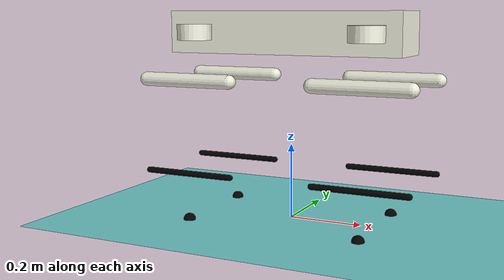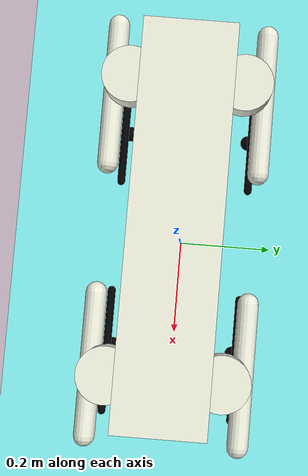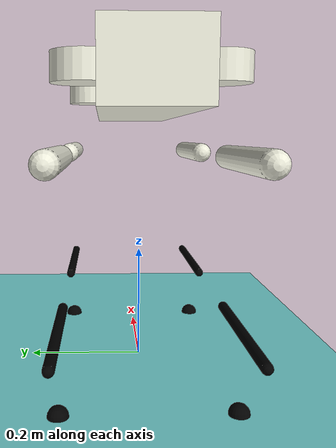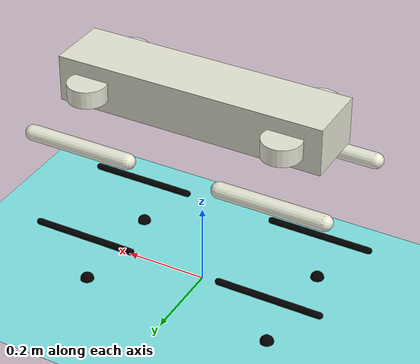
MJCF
<mujoco model="aliengo_description">
    <compiler angle="radian" meshdir="../meshes/" />

    <option iterations="50" />
    <custom>
        <!-- brax custom params -->
        <numeric data="0.0 0.0 0.5 1.0 0.0 0.0 0.0 0.0 0.5 -0.9 0.0 0.5 -0.9 0.0 0.5 -0.9 0.0 0.5 -0.9" name="init_qpos"/>
        <numeric data="0" name="matrix_inv_iterations"/>
        <numeric data="20" name="solver_maxls"/>
    </custom>

    <default>
        <geom contype="0" conaffinity="1" condim='3' rgba="0.5 0.6 0.7 1" group="0" />
        <light castshadow="false" diffuse="1 1 1"/>
        <motor ctrlrange="-44 44" ctrllimited="false"/>
        <camera fovy="60"/>
        <joint damping="0.1" armature="0.01" frictionloss="0.0" />
    </default>

    <asset>
        <mesh name="trunk" file="trunk.stl" />
        <mesh name="hip" file="hip.stl" />
        <mesh name="thigh_mirror" file="thigh_mirror.stl" />
        <mesh name="calf" file="calf.stl" />
        <mesh name="thigh" file="thigh.stl" />
    </asset>

    <asset>
        <texture type="skybox" builtin="gradient" rgb1="1.0 1.0 1.0" rgb2="1.0 1.0 1.0" width="512" height="512"/>
        <texture name="plane" type="2d" builtin="flat" rgb1="1 1 1" rgb2="1 1 1" width="512" height="512" mark="cross" markrgb="0 0 0"/>
        <material name="plane" reflectance="0.0" texture="plane" texrepeat="3 3" texuniform="true"/>
    </asset>

    <visual>
        <rgba com="0.502 1.0 0 0.5" contactforce="0.98 0.4 0.4 0.7" contactpoint="1.0 1.0 0.6 0.4"/>
        <scale com="0.2" forcewidth="0.035" contactwidth="0.10" contactheight="0.04"/>
    </visual>

    <worldbody>
        <light directional="true" diffuse=".8 .8 .8" pos="0 0 10" dir="0 0 -10"/>
        <camera name="track" mode="trackcom" pos="0 -1.3 1.6" xyaxes="1 0 0 0 0.707 0.707"/>
        <geom name='floor' type='plane' contype='1' conaffinity='0' rgba="0.5 0.9 0.9 0.1" material='plane' pos='0 0 0' size='0 0 1'/>

        <body name="trunk" pos="0 0 0.5">
            <inertial pos="0.008465 0.004045 -0.000763" mass="9.041" diaginertia="0.033260231 0.16117211 0.17460442" />
            <joint name="trunk" type="free" damping="0" armature="0" frictionloss="0"/>
            <geom type="box" contype="0" conaffinity="0" group="1" rgba="0.913725 0.913725 0.847059 1" size="0.3235 0.075 0.056" />

            <body name="FR_hip" pos="0.2399 -0.051 0">
                <inertial pos="-0.022191 -0.015144 -1.5e-05" mass="1.993" diaginertia="0.002903894 0.004907517 0.005586944" />
                <joint name="FR_hip_joint" pos="0 0 0" axis="1 0 0" limited="false" range="-0.873 1.047" />
                <geom type="cylinder" contype="0" conaffinity="0" group="1" rgba="0.913725 0.913725 0.847059 1" size="0.046 0.0209" pos="0 -0.0415 0" quat="0 0 0 1" />

                <body name="FR_thigh" pos="0 -0.083 0">
                    <inertial pos="-0.005607 0.003877 -0.048199" mass="0.639" diaginertia="0.005666803 0.005847229 0.000369811" />
                    <joint name="FR_thigh_joint" pos="0 0 0" axis="0 1 0" limited="false" range="-0.524 3.927" />
                    <geom type="capsule" contype="0" conaffinity="0" group="1" rgba="0.913725 0.913725 0.847059 1" size="0.0187 0.125" pos="0 0 -0.125" quat="0.707107 0 0.707107 0" />

                    <body name="FR_calf" pos="0 0 -0.25">
                        <inertial pos="0.002781 6.3e-05 -0.142518" mass="0.207" diaginertia="0.006341369 0.006355157 3.9188e-05" />
                        <joint name="FR_calf_joint" pos="0 0 0" axis="0 1 0" limited="false" range="-2.775 -0.611" />
                        <geom type="capsule" contype="0" conaffinity="0" group="1" rgba="0 0 0 1" size="0.008 0.125" pos="0 0 -0.125" quat="0.707107 0 0.707107 0" />
                        <geom type="sphere" size="0.0165" pos="0 0 -0.25" rgba="0 0 0 1" />
                    </body>
                </body>
            </body>

            <body name="FL_hip" pos="0.2399 0.051 0">
                <inertial pos="-0.022191 0.015144 -1.5e-05" mass="1.993" diaginertia="0.002903894 0.004907517 0.005586944" />
                <joint name="FL_hip_joint" pos="0 0 0" axis="1 0 0" limited="false" range="-0.873 1.047" />
                <geom type="cylinder" contype="0" conaffinity="0" group="1" rgba="0.913725 0.913725 0.847059 1" size="0.046 0.0209" pos="0 0.0415 0" quat="0 0 0 1" />

                <body name="FL_thigh" pos="0 0.083 0">
                    <inertial pos="-0.005607 -0.003877 -0.048199" mass="0.639" diaginertia="0.005666803 0.005847229 0.000369811" />
                    <joint name="FL_thigh_joint" pos="0 0 0" axis="0 1 0" limited="false" range="-0.524 3.927" />
                    <geom type="capsule" contype="0" conaffinity="0" group="1" rgba="0.913725 0.913725 0.847059 1" size="0.0187 0.125" pos="0 0 -0.125" quat="0.707107 0 0.707107 0" />

                    <body name="FL_calf" pos="0 0 -0.25">
                        <inertial pos="0.002781 -6.3e-05 -0.142518" mass="0.207" diaginertia="0.006341369 0.006355157 3.9188e-05" />
                        <joint name="FL_calf_joint" pos="0 0 0" axis="0 1 0" limited="false" range="-2.775 -0.611" />
                        <geom type="capsule" contype="0" conaffinity="0" group="1" rgba="0 0 0 1" size="0.008 0.125" pos="0 0 -0.125" quat="0.707107 0 0.707107 0" />
                        <geom type="sphere" size="0.0165" pos="0 0 -0.25" rgba="0 0 0 1" />
                    </body>
                </body>
            </body>

            <body name="RR_hip" pos="-0.2399 -0.051 0">
                <inertial pos="0.022191 -0.015144 -1.5e-05" mass="1.993" diaginertia="0.002903894 0.004907517 0.005586944" />
                <joint name="RR_hip_joint" pos="0 0 0" axis="1 0 0" limited="false" range="-0.873 1.047" />
                <geom type="cylinder" contype="0" conaffinity="0" group="1" rgba="0.913725 0.913725 0.847059 1" size="0.046 0.0209" pos="0 -0.0415 0" quat="0 0 0 1" />

                <body name="RR_thigh" pos="0 -0.083 0">
                    <inertial pos="-0.005607 0.003877 -0.048199" mass="0.639" diaginertia="0.005666803 0.005847229 0.000369811" />
                    <joint name="RR_thigh_joint" pos="0 0 0" axis="0 1 0" limited="false" range="-0.524 3.927" />
                    <geom type="capsule" contype="0" conaffinity="0" group="1" rgba="0.913725 0.913725 0.847059 1" size="0.0187 0.125" pos="0 0 -0.125" quat="0.707107 0 0.707107 0" />

                    <body name="RR_calf" pos="0 0 -0.25">
                        <inertial pos="0.002781 6.3e-05 -0.142518" mass="0.207" diaginertia="0.006341369 0.006355157 3.9188e-05" />
                        <joint name="RR_calf_joint" pos="0 0 0" axis="0 1 0" limited="false" range="-2.775 -0.611" />
                        <geom type="capsule" contype="0" conaffinity="0" group="1" rgba="0 0 0 1" size="0.008 0.125" pos="0 0 -0.125" quat="0.707107 0 0.707107 0" />
                        <geom type="sphere" size="0.0165" pos="0 0 -0.25" rgba="0 0 0 1" />
                    </body>
                </body>
            </body>

            <body name="RL_hip" pos="-0.2399 0.051 0">
                <inertial pos="0.022191 0.015144 -1.5e-05" mass="1.993" diaginertia="0.002903894 0.004907517 0.005586944" />
                <joint name="RL_hip_joint" pos="0 0 0" axis="1 0 0" limited="false" range="-0.873 1.047" />
                <geom type="cylinder" contype="0" conaffinity="0" group="1" rgba="0.913725 0.913725 0.847059 1" size="0.046 0.0209" pos="0 0.0415 0" quat="0 0 0 1" />

                <body name="RL_thigh" pos="0 0.083 0">
                    <inertial pos="-0.005607 -0.003877 -0.048199" mass="0.639" diaginertia="0.005666803 0.005847229 0.000369811" />
                    <joint name="RL_thigh_joint" pos="0 0 0" axis="0 1 0" limited="false" range="-0.524 3.927" />
                    <geom type="capsule" contype="0" conaffinity="0" group="1" rgba="0.913725 0.913725 0.847059 1" size="0.0187 0.125" pos="0 0 -0.125" quat="0.707107 0 0.707107 0" />

                    <body name="RL_calf" pos="0 0 -0.25">
                        <inertial pos="0.002781 -6.3e-05 -0.142518" mass="0.207" diaginertia="0.006341369 0.006355157 3.9188e-05" />
                        <joint name="RL_calf_joint" pos="0 0 0" axis="0 1 0" limited="false" range="-2.775 -0.611" />
                        <geom type="capsule" contype="0" conaffinity="0" group="1" rgba="0 0 0 1" size="0.008 0.125" pos="0 0 -0.125" quat="0.707107 0 0.707107 0" />
                        <geom type="sphere" size="0.0165" pos="0 0 -0.25" rgba="0 0 0 1" />
                    </body>
                </body>
            </body>
        </body>
    </worldbody>

    <actuator>
        <motor name="FR_hip"       gear="1" joint="FR_hip_joint"/>
        <motor name="FR_thigh"     gear="1" joint="FR_thigh_joint"/>
        <motor name="FR_calf"      gear="1" joint="FR_calf_joint"/>
        <motor name="FL_hip"       gear="1" joint="FL_hip_joint"/>
        <motor name="FL_thigh"     gear="1" joint="FL_thigh_joint"/>
        <motor name="FL_calf"      gear="1" joint="FL_calf_joint"/>
        <motor name="RR_hip"       gear="1" joint="RR_hip_joint"/>
        <motor name="RR_thigh"     gear="1" joint="RR_thigh_joint"/>
        <motor name="RR_calf"      gear="1" joint="RR_calf_joint"/>
        <motor name="RL_hip"       gear="1" joint="RL_hip_joint"/>
        <motor name="RL_thigh"     gear="1" joint="RL_thigh_joint"/>
        <motor name="RL_calf"      gear="1" joint="RL_calf_joint"/>
    </actuator>
</mujoco>
